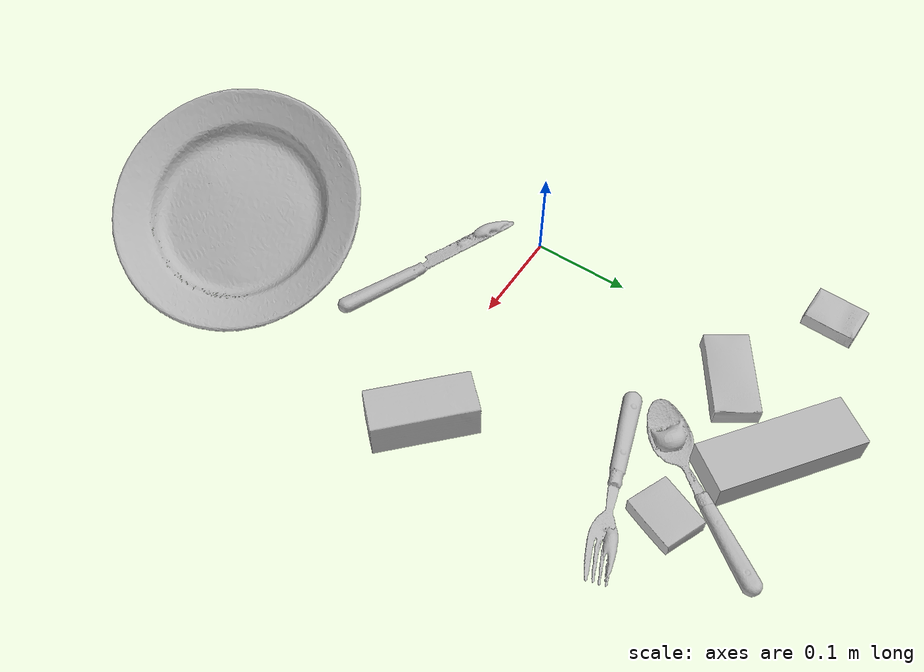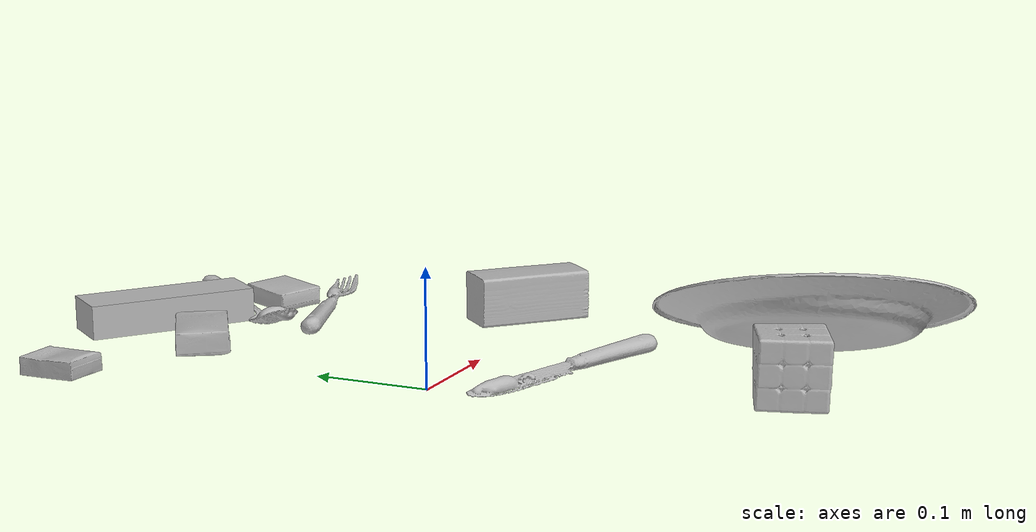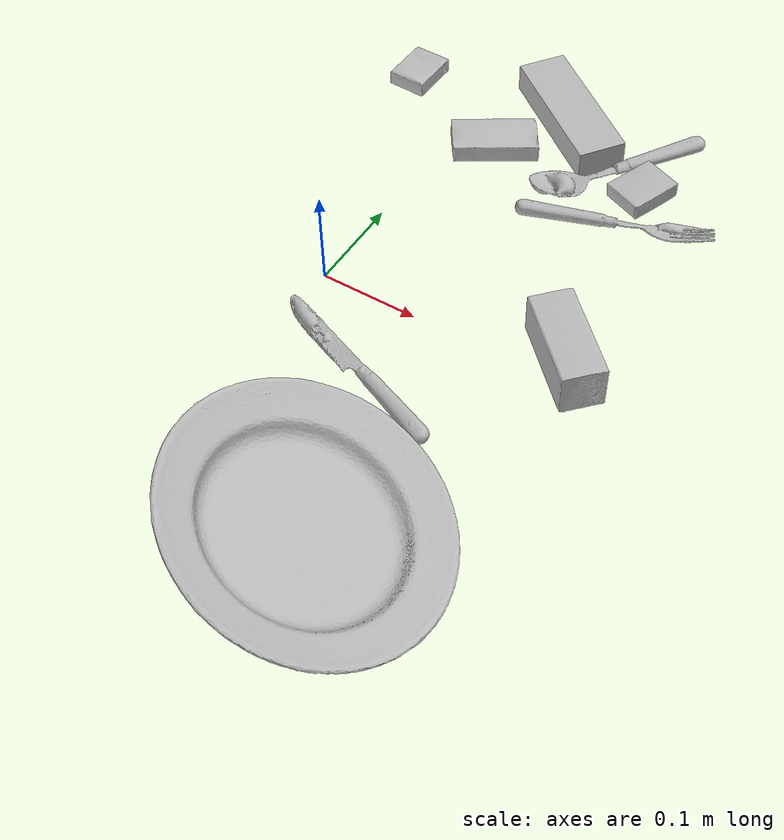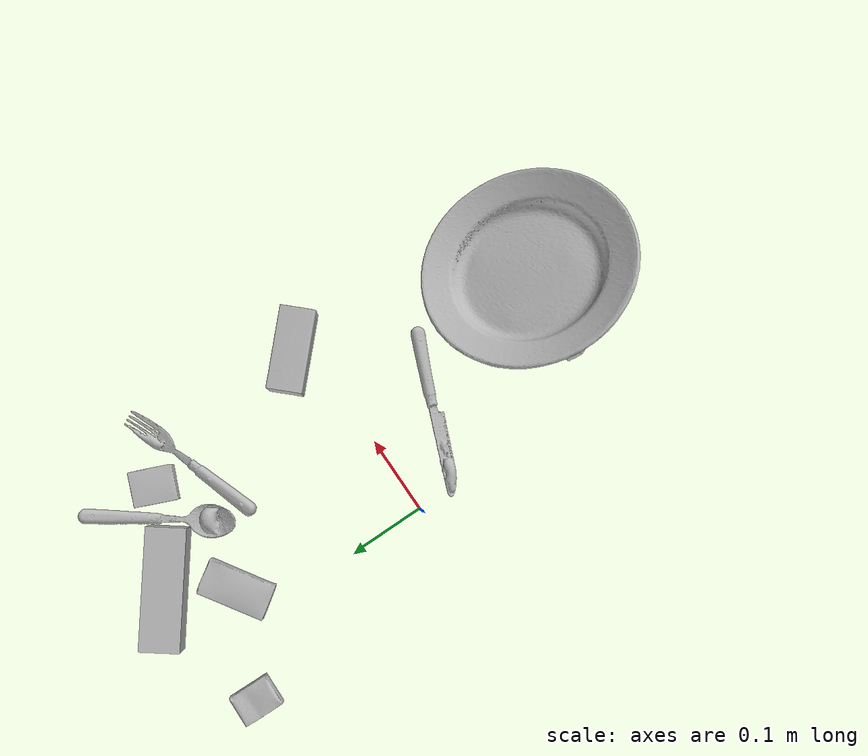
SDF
<sdf version="1.4">
  <world name="default">
    <light name="light1" type="point">
      <pose>0 0 1 0 0 0</pose>
      <diffuse>3 3 3 1</diffuse>
      <specular>3 3 3 1</specular>
    </light>
    <light name="light2" type="point">
      <pose>0 0.5 2 0 0 0</pose>
      <diffuse>1 1 1 1</diffuse>
      <specular>1 1 1 1</specular>
    </light>
    <light name="light3" type="point">
      <pose>0 0.5 2 0 0 0</pose>
      <diffuse>3 3 3 1</diffuse>
      <specular>3 3 3 1</specular>
    </light>
    <scene>
      <ambient>0.7 0.7 0.7</ambient>
    </scene>
    <model name="box11">
      <link name="link_box11">
        <collision name="default">
          <geometry>
            <mesh>
              <uri>model://rubiks_cube/collision_meshes/collision.obj</uri>
              <scale>1.0 1.0 1.0</scale>
            </mesh>
          </geometry>
          <surface>
            <friction>
              <ode>
                <mu>0.5</mu>
                <mu2>0.5</mu2>
              </ode>
            </friction>
          <contact>
        <ode>
            <max_vel>0</max_vel>
            <min_depth>0.0001</min_depth>
            <kp>1e8</kp>
        </ode>
    </contact></surface>
        </collision>
        <visual name="default">
          <geometry>
            <mesh>
              <uri>model://rubiks_cube/visual_meshes/visual.dae</uri>
              <scale>1.0 1.0 1.0</scale>
            </mesh>
          </geometry>
        </visual>
        <inertial>
          <mass>0.14537504315376282</mass>
          <pose>2.6721039830590598e-05 5.2569666877388954e-05 -7.264316082000732e-06 -0.05467316775404926 -0.09814130205097539 -0.03445549690793288</pose>
          <inertia>
            <ixx>8.032947e-05</ixx>
            <iyy>7.9954865e-05</iyy>
            <izz>8.099513e-05</izz>
            <ixy>0</ixy>
            <ixz>0</ixz>
            <iyz>0</iyz>
          </inertia>
        </inertial>
      </link>
      <pose>0.08281371742486954 -0.2743145525455475 0.028679613023996353 2.459836746247629e-05 -1.0115779112519562e-05 0.36671836848383693</pose>
    </model>
    <model name="box12">
      <link name="link_box12">
        <collision name="default">
          <geometry>
            <mesh>
              <uri>model://cracker_box/collision_meshes/collision.obj</uri>
              <scale>0.25 0.25 0.25</scale>
            </mesh>
          </geometry>
          <surface>
            <friction>
              <ode>
                <mu>0.5</mu>
                <mu2>0.5</mu2>
              </ode>
            </friction>
          <contact>
        <ode>
            <max_vel>0</max_vel>
            <min_depth>0.0001</min_depth>
            <kp>1e8</kp>
        </ode>
    </contact></surface>
        </collision>
        <visual name="default">
          <geometry>
            <mesh>
              <uri>model://cracker_box/visual_meshes/visual.dae</uri>
              <scale>0.25 0.25 0.25</scale>
            </mesh>
          </geometry>
        </visual>
        <inertial>
          <mass>0.04629049822688103</mass>
          <pose>0.00023660360602661967 6.358561950037256e-05 -0.00042573834070935845 -0.00031620769195764 -0.01110649332573822 0.0025467952358288496</pose>
          <inertia>
            <ixx>7.358898e-06</ixx>
            <iyy>1.2150985e-05</iyy>
            <izz>1.7340568e-05</izz>
            <ixy>0</ixy>
            <ixz>0</ixz>
            <iyz>0</iyz>
          </inertia>
        </inertial>
      </link>
      <pose>-0.07877963781356812 0.2956295311450958 0.009096026420593262 -0.014050494184066984 -0.005016589823959971 -1.5985830867555166</pose>
    </model>
    <model name="box13">
      <link name="link_box13">
        <collision name="default">
          <geometry>
            <mesh>
              <uri>model://sugar_box/collision_meshes/collision.obj</uri>
              <scale>0.5 0.5 0.5</scale>
            </mesh>
          </geometry>
          <surface>
            <friction>
              <ode>
                <mu>0.5</mu>
                <mu2>0.5</mu2>
              </ode>
            </friction>
          <contact>
        <ode>
            <max_vel>0</max_vel>
            <min_depth>0.0001</min_depth>
            <kp>1e8</kp>
        </ode>
    </contact></surface>
        </collision>
        <visual name="default">
          <geometry>
            <mesh>
              <uri>model://sugar_box/visual_meshes/visual.dae</uri>
              <scale>0.5 0.5 0.5</scale>
            </mesh>
          </geometry>
        </visual>
        <inertial>
          <mass>0.06844717264175415</mass>
          <pose>0.0005171863595023751 1.924554817378521e-05 -0.00018182402709499002 -0.0004046259509043031 0.0010506635218006705 0.0026153792547683827</pose>
          <inertia>
            <ixx>1.4257497e-05</ixx>
            <iyy>4.608316e-05</iyy>
            <izz>5.5167053e-05</izz>
            <ixy>0</ixy>
            <ixz>0</ixz>
            <iyz>0</iyz>
          </inertia>
        </inertial>
      </link>
      <pose>0.04627222195267677 0.2404460459947586 0.011399306356906891 0.0007750805221491313 -0.023433133071756956 -2.560201075398165</pose>
    </model>
    <model name="box21">
      <link name="link_box21">
        <collision name="default">
          <geometry>
            <mesh>
              <uri>model://wood_block/collision_meshes/collision.obj</uri>
              <scale>0.5 0.5 0.5</scale>
            </mesh>
          </geometry>
          <surface>
            <friction>
              <ode>
                <mu>0.5</mu>
                <mu2>0.5</mu2>
              </ode>
            </friction>
          <contact>
        <ode>
            <max_vel>0</max_vel>
            <min_depth>0.0001</min_depth>
            <kp>1e8</kp>
        </ode>
    </contact></surface>
        </collision>
        <visual name="default">
          <geometry>
            <mesh>
              <uri>model://wood_block/visual_meshes/visual.dae</uri>
              <scale>0.5 0.5 0.5</scale>
            </mesh>
          </geometry>
        </visual>
        <inertial>
          <mass>0.22006426751613617</mass>
          <pose>-2.9066577553749084e-06 -0.00028540476341731846 0.00013204292918089777 -0.05220890442695651 -0.005192696130650637 -0.006861379915905358</pose>
          <inertia>
            <ixx>7.361981e-05</ixx>
            <iyy>0.00023256506</iyy>
            <izz>0.00023169514</izz>
            <ixy>0</ixy>
            <ixz>0</ixz>
            <iyz>0</iyz>
          </inertia>
        </inertial>
      </link>
      <pose>0.2478571981191635 0.021482381969690323 0.022629259154200554 -0.005208339209654332 0.005718794177226887 -0.7601161592715313</pose>
    </model>
    <model name="box22">
      <link name="link_box22">
        <collision name="default">
          <geometry>
            <mesh>
              <uri>model://jenga/collision_meshes/collision.obj</uri>
              <scale>1.0 1.0 1.0</scale>
            </mesh>
          </geometry>
          <surface>
            <friction>
              <ode>
                <mu>0.5</mu>
                <mu2>0.5</mu2>
              </ode>
            </friction>
          <contact>
        <ode>
            <max_vel>0</max_vel>
            <min_depth>0.0001</min_depth>
            <kp>1e8</kp>
        </ode>
    </contact></surface>
        </collision>
        <visual name="default">
          <geometry>
            <mesh>
              <uri>model://jenga/visual_meshes/visual.dae</uri>
              <scale>1.0 1.0 1.0</scale>
            </mesh>
          </geometry>
        </visual>
        <inertial>
          <mass>0.1883949637413025</mass>
          <pose>-2.502855807051674e-07 -0.00010250010382151231 -4.0923405322246253e-05 0.0 -7.342154049184251e-07 0.0</pose>
          <inertia>
            <ixx>5.213346e-05</ixx>
            <iyy>0.0003532549</iyy>
            <izz>0.00037712968</izz>
            <ixy>0</ixy>
            <ixz>0</ixz>
            <iyz>0</iyz>
          </inertia>
        </inertial>
      </link>
      <pose>0.09583214670419693 0.3114253282546997 0.01499999687075615 -5.154693574488812e-09 3.502722002015769e-09 2.4993728236643804</pose>
    </model>
    <model name="box23">
      <link name="link_box23">
        <collision name="default">
          <geometry>
            <mesh>
              <uri>model://pudding_box/collision_meshes/collision.obj</uri>
              <scale>0.5 0.5 0.5</scale>
            </mesh>
          </geometry>
          <surface>
            <friction>
              <ode>
                <mu>0.5</mu>
                <mu2>0.5</mu2>
              </ode>
            </friction>
          <contact>
        <ode>
            <max_vel>0</max_vel>
            <min_depth>0.0001</min_depth>
            <kp>1e8</kp>
        </ode>
    </contact></surface>
        </collision>
        <visual name="default">
          <geometry>
            <mesh>
              <uri>model://pudding_box/visual_meshes/visual.dae</uri>
              <scale>0.5 0.5 0.5</scale>
            </mesh>
          </geometry>
        </visual>
        <inertial>
          <mass>0.030779412016272545</mass>
          <pose>0.00024474109522998333 0.0004033942532259971 -0.0002594413817860186 0.0052131022413302 -0.00660379919873188 0.020079828882866795</pose>
          <inertia>
            <ixx>8.6986365e-06</ixx>
            <iyy>5.8525034e-06</iyy>
            <izz>1.2845808e-05</izz>
            <ixy>0</ixy>
            <ixz>0</ixz>
            <iyz>0</iyz>
          </inertia>
        </inertial>
      </link>
      <pose>0.20747852325439453 0.2548879086971283 0.009862902574241161 0.02234858812335439 -0.011391670447634472 -0.3986887870711157</pose>
    </model>
    <model name="plate1">
      <link name="link_plate1">
        <collision name="default">
          <geometry>
            <mesh>
              <uri>model://plate/collision_meshes/collision.obj</uri>
              <scale>1.0 1.0 1.0</scale>
            </mesh>
          </geometry>
          <surface>
            <friction>
              <ode>
                <mu>0.5</mu>
                <mu2>0.5</mu2>
              </ode>
            </friction>
          <contact>
        <ode>
            <max_vel>0</max_vel>
            <min_depth>0.0001</min_depth>
            <kp>1e8</kp>
        </ode>
    </contact></surface>
        </collision>
        <visual name="default">
          <geometry>
            <mesh>
              <uri>model://plate/visual_meshes/visual.dae</uri>
              <scale>1.0 1.0 1.0</scale>
            </mesh>
          </geometry>
        </visual>
        <inertial>
          <mass>0.2551877498626709</mass>
          <pose>-0.0006044633337296546 0.0002782584633678198 -0.0010561984963715076 0.002218758596895186 -0.003225500510611216 0.45261892370472845</pose>
          <inertia>
            <ixx>0.0011937734</ixx>
            <iyy>0.0011823553</iyy>
            <izz>0.002334842</izz>
            <ixy>0</ixy>
            <ixz>0</ixz>
            <iyz>0</iyz>
          </inertia>
        </inertial>
      </link>
      <pose>0.16757658123970032 -0.2665000259876251 0.04665717855095863 -0.39805585288808876 -0.161959979539855 -1.5897055150820683</pose>
    </model>
    <model name="silverware1">
      <link name="link_silverware1">
        <collision name="default">
          <geometry>
            <mesh>
              <uri>model://knife/collision_meshes/collision.obj</uri>
              <scale>1.0 1.0 1.0</scale>
            </mesh>
          </geometry>
          <surface>
            <friction>
              <ode>
                <mu>0.5</mu>
                <mu2>0.5</mu2>
              </ode>
            </friction>
          <contact>
        <ode>
            <max_vel>0</max_vel>
            <min_depth>0.0001</min_depth>
            <kp>1e8</kp>
        </ode>
    </contact></surface>
        </collision>
        <visual name="default">
          <geometry>
            <mesh>
              <uri>model://knife/visual_meshes/visual.dae</uri>
              <scale>1.0 1.0 1.0</scale>
            </mesh>
          </geometry>
        </visual>
        <inertial>
          <mass>0.030903667211532593</mass>
          <pose>-0.023785250261425972 0.0015275125624611974 5.062023410573602e-05 0.07305665398911224 0.017248417197799442 -0.0074098217442817044</pose>
          <inertia>
            <ixx>8.7717143e-07</ixx>
            <iyy>0.00011872688</iyy>
            <izz>0.000119009375</izz>
            <ixy>0</ixy>
            <ixz>0</ixz>
            <iyz>0</iyz>
          </inertia>
        </inertial>
      </link>
      <pose>0.08889177441596985 -0.08356750011444092 0.005810708273202181 2.8893532894463823 0.02591461708089154 2.759682282479797</pose>
    </model>
    <model name="silverware2">
      <link name="link_silverware2">
        <collision name="default">
          <geometry>
            <mesh>
              <uri>model://spoon/collision_meshes/collision.obj</uri>
              <scale>1.0 1.0 1.0</scale>
            </mesh>
          </geometry>
          <surface>
            <friction>
              <ode>
                <mu>0.5</mu>
                <mu2>0.5</mu2>
              </ode>
            </friction>
          <contact>
        <ode>
            <max_vel>0</max_vel>
            <min_depth>0.0001</min_depth>
            <kp>1e8</kp>
        </ode>
    </contact></surface>
        </collision>
        <visual name="default">
          <geometry>
            <mesh>
              <uri>model://spoon/visual_meshes/visual.dae</uri>
              <scale>1.0 1.0 1.0</scale>
            </mesh>
          </geometry>
        </visual>
        <inertial>
          <mass>0.020994963124394417</mass>
          <pose>-0.005526323337107897 -0.00160341733135283 -0.0007271658978424966 0.035216710718480135 -0.03906584501417282 0.00615060951780049</pose>
          <inertia>
            <ixx>1.1677738e-06</ixx>
            <iyy>7.988513e-05</iyy>
            <izz>8.046103e-05</izz>
            <ixy>0</ixy>
            <ixz>0</ixz>
            <iyz>0</iyz>
          </inertia>
        </inertial>
      </link>
      <pose>0.17212601006031036 0.2717842757701874 0.008385260589420795 0.006729386942312377 0.026892996667411673 -2.206448579396308</pose>
    </model>
    <model name="silverware3">
      <link name="link_silverware3">
        <collision name="default">
          <geometry>
            <mesh>
              <uri>model://fork/collision_meshes/collision.obj</uri>
              <scale>1.0 1.0 1.0</scale>
            </mesh>
          </geometry>
          <surface>
            <friction>
              <ode>
                <mu>0.5</mu>
                <mu2>0.5</mu2>
              </ode>
            </friction>
          <contact>
        <ode>
            <max_vel>0</max_vel>
            <min_depth>0.0001</min_depth>
            <kp>1e8</kp>
        </ode>
    </contact></surface>
        </collision>
        <visual name="default">
          <geometry>
            <mesh>
              <uri>model://fork/visual_meshes/visual.dae</uri>
              <scale>1.0 1.0 1.0</scale>
            </mesh>
          </geometry>
        </visual>
        <inertial>
          <mass>0.012144052423536777</mass>
          <pose>-0.029570043087005615 0.0004658822144847363 0.0003218860656488687 -0.013551171335247731 -0.01097783699854739 0.014453902564514984</pose>
          <inertia>
            <ixx>4.257177e-07</ixx>
            <iyy>3.170462e-05</iyy>
            <izz>3.1895037e-05</izz>
            <ixy>0</ixy>
            <ixz>0</ixz>
            <iyz>0</iyz>
          </inertia>
        </inertial>
      </link>
      <pose>0.2038254290819168 0.2023344486951828 0.0056875054724514484 -0.1902684999858608 0.02481067782640591 0.3190830326245861</pose>
    </model>
  <physics type="ode">
      <max_contacts>50</max_contacts>
      <ode>
        <solver>
          <type>quick</type>
          <iters>75</iters>
        </solver>
        <constraints>
          <contact_max_correcting_vel>0</contact_max_correcting_vel>
          <contact_surface_layer>0</contact_surface_layer>
        </constraints>
      </ode>
    </physics></world>
</sdf>
